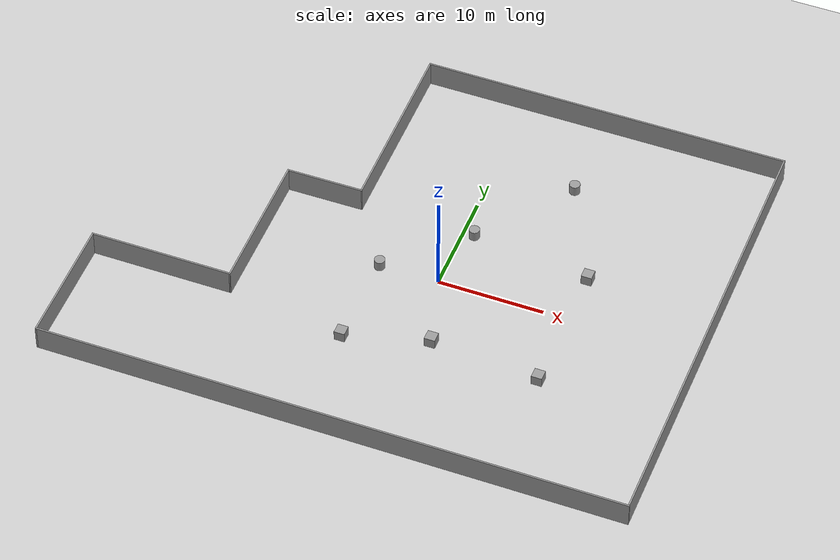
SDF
<sdf version="1.6">
 <world name="default">
  <include><uri>model://ground_plane</uri></include>
  <include><uri>model://sun</uri></include>
  <scene><shadows>false</shadows></scene>
  <physics type="ode">
   <real_time_update_rate>1000.0</real_time_update_rate>
   <max_step_size>0.001</max_step_size>
   <real_time_factor>1</real_time_factor>
   <ode>
    <solver>
     <type>quick</type>
     <iters>150</iters>
     <precon_iters>0</precon_iters>
     <sor>1.400000</sor>
     <use_dynamic_moi_rescaling>1</use_dynamic_moi_rescaling>
    </solver>
    <constraints>
     <cfm>0.00001</cfm>
     <erp>0.2</erp>
     <contact_max_correcting_vel>2000.000000</contact_max_correcting_vel>
     <contact_surface_layer>0.01000</contact_surface_layer>
    </constraints>
   </ode>
  </physics>
  <model name="land3">
   <pose>-2.6578 1.5868 0 0 -0 0</pose>
   <link name="Wall_10">
    <collision name="Wall_10_Collision">
     <geometry><box><size>17.5 0.15 2.5</size></box></geometry>
     <pose>0 0 1.25 0 -0 0</pose>
    </collision>
    <visual name="Wall_10_Visual">
     <pose>0 0 1.25 0 -0 0</pose>
     <geometry><box><size>17.5 0.15 2.5</size></box></geometry>
     <material>
      <script><uri>file://media/materials/scripts/gazebo.material</uri><name>Gazebo/Grey</name></script>
      <ambient>1 1 1 1</ambient>
     </material>
     <meta><layer>0</layer></meta>
    </visual>
    <pose>-7.05 12.875 0 0 -0 1.5708</pose>
   </link>
   <link name="Wall_11">
    <collision name="Wall_11_Collision">
     <geometry><box><size>34.75 0.15 2.5</size></box></geometry>
     <pose>0 0 1.25 0 -0 0</pose>
    </collision>
    <visual name="Wall_11_Visual">
     <pose>0 0 1.25 0 -0 0</pose>
     <geometry><box><size>34.75 0.15 2.5</size></box></geometry>
     <material>
      <script><uri>file://media/materials/scripts/gazebo.material</uri><name>Gazebo/Grey</name></script>
      <ambient>1 1 1 1</ambient>
     </material>
     <meta><layer>0</layer></meta>
    </visual>
    <pose>10.25 21.55 0 0 -0 0</pose>
   </link>
   <link name="Wall_12">
    <collision name="Wall_12_Collision">
     <geometry><box><size>43.25 0.15 2.5</size></box></geometry>
     <pose>0 0 1.25 0 -0 0</pose>
    </collision>
    <visual name="Wall_12_Visual">
     <pose>0 0 1.25 0 -0 0</pose>
     <geometry><box><size>43.25 0.15 2.5</size></box></geometry>
     <material>
      <script><uri>file://media/materials/scripts/gazebo.material</uri><name>Gazebo/Grey</name></script>
      <ambient>1 1 1 1</ambient>
     </material>
     <meta><layer>0</layer></meta>
    </visual>
    <pose>27.55 -0 0 0 -0 -1.5708</pose>
   </link>
   <link name="Wall_13">
    <collision name="Wall_13_Collision">
     <geometry><box><size>55.25 0.15 2.5</size></box></geometry>
     <pose>0 0 1.25 0 -0 0</pose>
    </collision>
    <visual name="Wall_13_Visual">
     <pose>0 0 1.25 0 -0 0</pose>
     <geometry><box><size>55.25 0.15 2.5</size></box></geometry>
     <material>
      <script><uri>file://media/materials/scripts/gazebo.material</uri><name>Gazebo/Grey</name></script>
      <ambient>1 1 1 1</ambient>
     </material>
     <meta><layer>0</layer></meta>
    </visual>
    <pose>-1e-06 -21.55 0 0 -0 3.14159</pose>
   </link>
   <link name="Wall_14">
    <collision name="Wall_14_Collision">
     <geometry><box><size>12.25 0.15 2.5</size></box></geometry>
     <pose>0 0 1.25 0 -0 0</pose>
    </collision>
    <visual name="Wall_14_Visual">
     <pose>0 0 1.25 0 -0 0</pose>
     <geometry><box><size>12.25 0.15 2.5</size></box></geometry>
     <material>
      <script><uri>file://media/materials/scripts/gazebo.material</uri><name>Gazebo/Grey</name></script>
      <ambient>1 1 1 1</ambient>
     </material>
     <meta><layer>0</layer></meta>
    </visual>
    <pose>-27.55 -15.5 0 0 -0 1.5708</pose>
   </link>
   <link name="Wall_15">
    <collision name="Wall_15_Collision">
     <geometry><box><size>13.5 0.15 2.5</size></box></geometry>
     <pose>0 0 1.25 0 -0 0</pose>
    </collision>
    <visual name="Wall_15_Visual">
     <pose>0 0 1.25 0 -0 0</pose>
     <geometry><box><size>13.5 0.15 2.5</size></box></geometry>
     <material>
      <script><uri>file://media/materials/scripts/gazebo.material</uri><name>Gazebo/Grey</name></script>
      <ambient>1 1 1 1</ambient>
     </material>
     <meta><layer>0</layer></meta>
    </visual>
    <pose>-20.875 -9.45 0 0 -0 0</pose>
   </link>
   <link name="Wall_16">
    <collision name="Wall_16_Collision">
     <geometry><box><size>13.75 0.15 2.5</size></box></geometry>
     <pose>0 0 1.25 0 -0 0</pose>
    </collision>
    <visual name="Wall_16_Visual">
     <pose>0 0 1.25 0 -0 0</pose>
     <geometry><box><size>13.75 0.15 2.5</size></box></geometry>
     <material>
      <script><uri>file://media/materials/scripts/gazebo.material</uri><name>Gazebo/Grey</name></script>
      <ambient>1 1 1 1</ambient>
     </material>
     <meta><layer>0</layer></meta>
    </visual>
    <pose>-14.2 -2.65 0 0 -0 1.5708</pose>
   </link>
   <link name="Wall_17">
    <collision name="Wall_17_Collision">
     <geometry><box><size>7.30018 0.15 2.5</size></box></geometry>
     <pose>0 0 1.25 0 -0 0</pose>
    </collision>
    <visual name="Wall_17_Visual">
     <pose>0 0 1.25 0 -0 0</pose>
     <geometry><box><size>7.30018 0.15 2.5</size></box></geometry>
     <material>
      <script><uri>file://media/materials/scripts/gazebo.material</uri><name>Gazebo/Grey</name></script>
      <ambient>1 1 1 1</ambient>
     </material>
     <meta><layer>0</layer></meta>
    </visual>
    <pose>-10.625 4.175 0 0 -0 0.006993</pose>
   </link>
   <static>1</static>
  </model>
  <model name="unit_box">
   <pose>2.0246 -7.01313 0.499995 0 1e-05 0</pose>
   <link name="link">
    <inertial>
     <mass>1</mass>
     <inertia>
      <ixx>0.166667</ixx>
      <ixy>0</ixy>
      <ixz>0</ixz>
      <iyy>0.166667</iyy>
      <iyz>0</iyz>
      <izz>0.166667</izz>
     </inertia>
    </inertial>
    <collision name="collision"><geometry><box><size>1 1 1</size></box></geometry></collision>
    <visual name="visual">
     <geometry><box><size>1 1 1</size></box></geometry>
     <material>
      <script><name>Gazebo/Grey</name><uri>file://media/materials/scripts/gazebo.material</uri></script>
     </material>
    </visual>
   </link>
  </model>
  <model name="unit_box_0">
   <pose>-5.6752 -9.18606 0.499995 -1e-05 -0 -0</pose>
   <link name="link">
    <inertial>
     <mass>1</mass>
     <inertia>
      <ixx>0.166667</ixx>
      <ixy>0</ixy>
      <ixz>0</ixz>
      <iyy>0.166667</iyy>
      <iyz>0</iyz>
      <izz>0.166667</izz>
     </inertia>
    </inertial>
    <collision name="collision"><geometry><box><size>1 1 1</size></box></geometry></collision>
    <visual name="visual">
     <geometry><box><size>1 1 1</size></box></geometry>
     <material>
      <script><name>Gazebo/Grey</name><uri>file://media/materials/scripts/gazebo.material</uri></script>
     </material>
    </visual>
   </link>
  </model>
  <model name="unit_cylinder">
   <pose>1.0638 6.29024 0.499992 -3e-06 -4e-06 -0</pose>
   <link name="link">
    <inertial>
     <mass>1</mass>
     <inertia><ixx>0.145833</ixx><ixy>0</ixy><ixz>0</ixz><iyy>0.145833</iyy><iyz>0</iyz><izz>0.125</izz></inertia>
    </inertial>
    <collision name="collision">
     <geometry><cylinder><radius>0.5</radius><length>1</length></cylinder></geometry>
    </collision>
    <visual name="visual">
     <geometry><cylinder><radius>0.5</radius><length>1</length></cylinder></geometry>
     <material>
      <script><name>Gazebo/Grey</name><uri>file://media/materials/scripts/gazebo.material</uri></script>
     </material>
    </visual>
   </link>
  </model>
  <model name="unit_cylinder_0">
   <pose>-5.56532 -0.209964 0.499997 3e-06 3e-06 0</pose>
   <link name="link">
    <inertial>
     <mass>1</mass>
     <inertia><ixx>0.145833</ixx><ixy>0</ixy><ixz>0</ixz><iyy>0.145833</iyy><iyz>0</iyz><izz>0.125</izz></inertia>
    </inertial>
    <collision name="collision">
     <geometry><cylinder><radius>0.5</radius><length>1</length></cylinder></geometry>
    </collision>
    <visual name="visual">
     <geometry><cylinder><radius>0.5</radius><length>1</length></cylinder></geometry>
     <material>
      <script><name>Gazebo/Grey</name><uri>file://media/materials/scripts/gazebo.material</uri></script>
     </material>
    </visual>
   </link>
  </model>
  <model name="unit_box_1">
   <pose>12.4375 4.94853 0.499995 0 1e-05 0</pose>
   <link name="link">
    <inertial>
     <mass>1</mass>
     <inertia>
      <ixx>0.166667</ixx>
      <ixy>0</ixy>
      <ixz>0</ixz>
      <iyy>0.166667</iyy>
      <iyz>0</iyz>
      <izz>0.166667</izz>
     </inertia>
    </inertial>
    <collision name="collision"><geometry><box><size>1 1 1</size></box></geometry></collision>
    <visual name="visual">
     <geometry><box><size>1 1 1</size></box></geometry>
     <material>
      <script><name>Gazebo/Grey</name><uri>file://media/materials/scripts/gazebo.material</uri></script>
     </material>
    </visual>
   </link>
  </model>
  <model name="unit_box_2">
   <pose>12.34 -7.74158 0.499995 -1e-05 -0 0</pose>
   <link name="link">
    <inertial>
     <mass>1</mass>
     <inertia>
      <ixx>0.166667</ixx>
      <ixy>0</ixy>
      <ixz>0</ixz>
      <iyy>0.166667</iyy>
      <iyz>0</iyz>
      <izz>0.166667</izz>
     </inertia>
    </inertial>
    <collision name="collision"><geometry><box><size>1 1 1</size></box></geometry></collision>
    <visual name="visual">
     <geometry><box><size>1 1 1</size></box></geometry>
     <material>
      <script><name>Gazebo/Grey</name><uri>file://media/materials/scripts/gazebo.material</uri></script>
     </material>
    </visual>
   </link>
  </model>
  <model name="unit_cylinder_1">
   <pose>7.6338 14.8483 0.499997 3e-06 4e-06 -0</pose>
   <link name="link">
    <inertial>
     <mass>1</mass>
     <inertia><ixx>0.145833</ixx><ixy>0</ixy><ixz>0</ixz><iyy>0.145833</iyy><iyz>0</iyz><izz>0.125</izz></inertia>
    </inertial>
    <collision name="collision">
     <geometry><cylinder><radius>0.5</radius><length>1</length></cylinder></geometry>
    </collision>
    <visual name="visual">
     <geometry><cylinder><radius>0.5</radius><length>1</length></cylinder></geometry>
     <material>
      <script><name>Gazebo/Grey</name><uri>file://media/materials/scripts/gazebo.material</uri></script>
     </material>
    </visual>
   </link>
  </model>
 </world>
</sdf>
